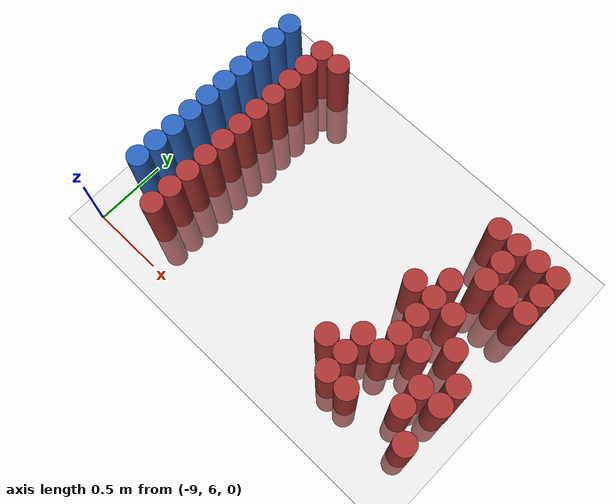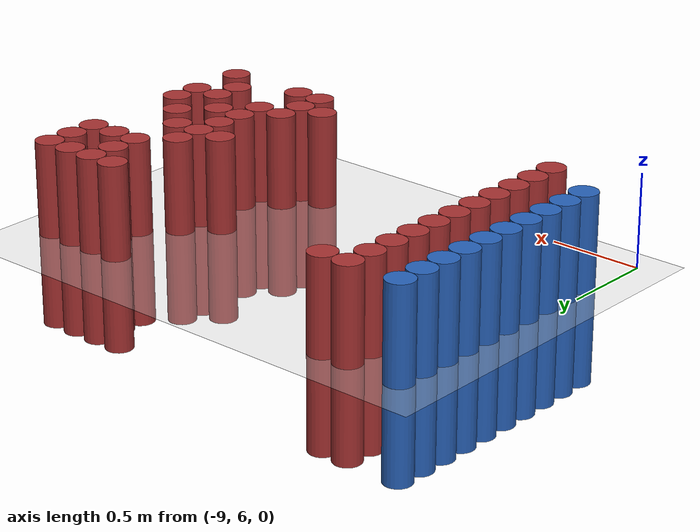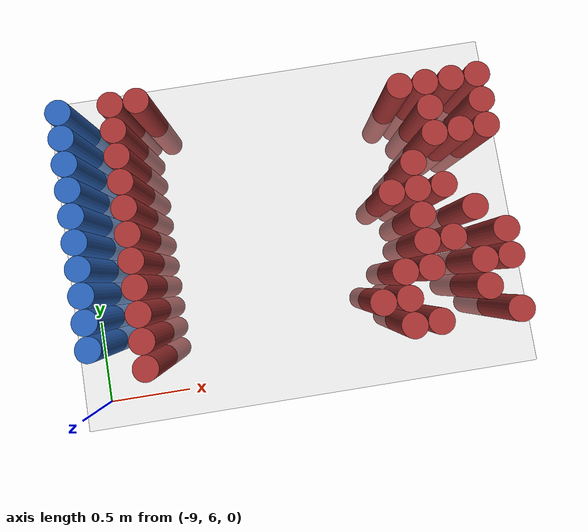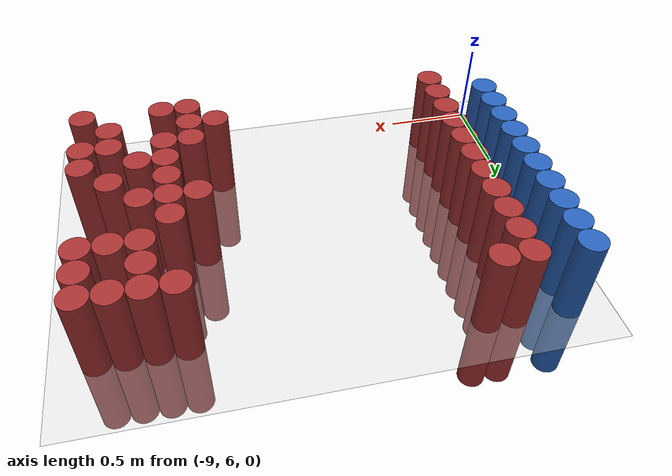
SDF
<sdf version="1.6">
 <world name="default">
  <model name="ground_plane">
   <static>1</static>
   <link name="link">
    <collision name="collision">
     <geometry><plane><normal>0 0 1</normal><size>100 100</size></plane></geometry>
     <surface><friction><ode><mu>100</mu><mu2>50</mu2></ode></friction></surface>
    </collision>
    <visual name="visual">
     <cast_shadows>0</cast_shadows>
     <geometry><plane><normal>0 0 1</normal><size>100 100</size></plane></geometry>
     <material>
      <script><uri>file://media/materials/scripts/gazebo.material</uri><name>Gazebo/Grey</name></script>
     </material>
    </visual>
   </link>
  </model>
  <model name="unit_cylinder_133">
   <static>1</static>
   <pose>-8.925000 6.375000 0.000000 0.000000 0.000000 0.000000</pose>
   <link name="link">
    <inertial>
     <mass>1</mass>
     <inertia><ixx>0.145833</ixx><ixy>0</ixy><ixz>0</ixz><iyy>0.145833</iyy><iyz>0</iyz><izz>0.125</izz></inertia>
    </inertial>
    <collision name="collision">
     <geometry><cylinder><radius>0.075000</radius><length>1</length></cylinder></geometry>
    </collision>
    <visual name="visual">
     <geometry><cylinder><radius>0.075000</radius><length>1</length></cylinder></geometry>
     <material>
      <ambient>0.152000 0.379000 0.720000 1</ambient>
      <diffuse>0.152000 0.379000 0.720000 1</diffuse>
     </material>
     <material>
      <script><name>Gazebo/Grey</name><uri>file://media/materials/scripts/gazebo.material</uri></script>
     </material>
    </visual>
   </link>
  </model>
  <model name="unit_cylinder_134">
   <static>1</static>
   <pose>-8.925000 6.525000 0.000000 0.000000 0.000000 0.000000</pose>
   <link name="link">
    <inertial>
     <mass>1</mass>
     <inertia><ixx>0.145833</ixx><ixy>0</ixy><ixz>0</ixz><iyy>0.145833</iyy><iyz>0</iyz><izz>0.125</izz></inertia>
    </inertial>
    <collision name="collision">
     <geometry><cylinder><radius>0.075000</radius><length>1</length></cylinder></geometry>
    </collision>
    <visual name="visual">
     <geometry><cylinder><radius>0.075000</radius><length>1</length></cylinder></geometry>
     <material>
      <ambient>0.152000 0.379000 0.720000 1</ambient>
      <diffuse>0.152000 0.379000 0.720000 1</diffuse>
     </material>
     <material>
      <script><name>Gazebo/Grey</name><uri>file://media/materials/scripts/gazebo.material</uri></script>
     </material>
    </visual>
   </link>
  </model>
  <model name="unit_cylinder_135">
   <static>1</static>
   <pose>-8.925000 6.675000 0.000000 0.000000 0.000000 0.000000</pose>
   <link name="link">
    <inertial>
     <mass>1</mass>
     <inertia><ixx>0.145833</ixx><ixy>0</ixy><ixz>0</ixz><iyy>0.145833</iyy><iyz>0</iyz><izz>0.125</izz></inertia>
    </inertial>
    <collision name="collision">
     <geometry><cylinder><radius>0.075000</radius><length>1</length></cylinder></geometry>
    </collision>
    <visual name="visual">
     <geometry><cylinder><radius>0.075000</radius><length>1</length></cylinder></geometry>
     <material>
      <ambient>0.152000 0.379000 0.720000 1</ambient>
      <diffuse>0.152000 0.379000 0.720000 1</diffuse>
     </material>
     <material>
      <script><name>Gazebo/Grey</name><uri>file://media/materials/scripts/gazebo.material</uri></script>
     </material>
    </visual>
   </link>
  </model>
  <model name="unit_cylinder_136">
   <static>1</static>
   <pose>-8.925000 6.825000 0.000000 0.000000 0.000000 0.000000</pose>
   <link name="link">
    <inertial>
     <mass>1</mass>
     <inertia><ixx>0.145833</ixx><ixy>0</ixy><ixz>0</ixz><iyy>0.145833</iyy><iyz>0</iyz><izz>0.125</izz></inertia>
    </inertial>
    <collision name="collision">
     <geometry><cylinder><radius>0.075000</radius><length>1</length></cylinder></geometry>
    </collision>
    <visual name="visual">
     <geometry><cylinder><radius>0.075000</radius><length>1</length></cylinder></geometry>
     <material>
      <ambient>0.152000 0.379000 0.720000 1</ambient>
      <diffuse>0.152000 0.379000 0.720000 1</diffuse>
     </material>
     <material>
      <script><name>Gazebo/Grey</name><uri>file://media/materials/scripts/gazebo.material</uri></script>
     </material>
    </visual>
   </link>
  </model>
  <model name="unit_cylinder_137">
   <static>1</static>
   <pose>-8.925000 6.975000 0.000000 0.000000 0.000000 0.000000</pose>
   <link name="link">
    <inertial>
     <mass>1</mass>
     <inertia><ixx>0.145833</ixx><ixy>0</ixy><ixz>0</ixz><iyy>0.145833</iyy><iyz>0</iyz><izz>0.125</izz></inertia>
    </inertial>
    <collision name="collision">
     <geometry><cylinder><radius>0.075000</radius><length>1</length></cylinder></geometry>
    </collision>
    <visual name="visual">
     <geometry><cylinder><radius>0.075000</radius><length>1</length></cylinder></geometry>
     <material>
      <ambient>0.152000 0.379000 0.720000 1</ambient>
      <diffuse>0.152000 0.379000 0.720000 1</diffuse>
     </material>
     <material>
      <script><name>Gazebo/Grey</name><uri>file://media/materials/scripts/gazebo.material</uri></script>
     </material>
    </visual>
   </link>
  </model>
  <model name="unit_cylinder_138">
   <static>1</static>
   <pose>-8.925000 7.125000 0.000000 0.000000 0.000000 0.000000</pose>
   <link name="link">
    <inertial>
     <mass>1</mass>
     <inertia><ixx>0.145833</ixx><ixy>0</ixy><ixz>0</ixz><iyy>0.145833</iyy><iyz>0</iyz><izz>0.125</izz></inertia>
    </inertial>
    <collision name="collision">
     <geometry><cylinder><radius>0.075000</radius><length>1</length></cylinder></geometry>
    </collision>
    <visual name="visual">
     <geometry><cylinder><radius>0.075000</radius><length>1</length></cylinder></geometry>
     <material>
      <ambient>0.152000 0.379000 0.720000 1</ambient>
      <diffuse>0.152000 0.379000 0.720000 1</diffuse>
     </material>
     <material>
      <script><name>Gazebo/Grey</name><uri>file://media/materials/scripts/gazebo.material</uri></script>
     </material>
    </visual>
   </link>
  </model>
  <model name="unit_cylinder_139">
   <static>1</static>
   <pose>-8.925000 7.275000 0.000000 0.000000 0.000000 0.000000</pose>
   <link name="link">
    <inertial>
     <mass>1</mass>
     <inertia><ixx>0.145833</ixx><ixy>0</ixy><ixz>0</ixz><iyy>0.145833</iyy><iyz>0</iyz><izz>0.125</izz></inertia>
    </inertial>
    <collision name="collision">
     <geometry><cylinder><radius>0.075000</radius><length>1</length></cylinder></geometry>
    </collision>
    <visual name="visual">
     <geometry><cylinder><radius>0.075000</radius><length>1</length></cylinder></geometry>
     <material>
      <ambient>0.152000 0.379000 0.720000 1</ambient>
      <diffuse>0.152000 0.379000 0.720000 1</diffuse>
     </material>
     <material>
      <script><name>Gazebo/Grey</name><uri>file://media/materials/scripts/gazebo.material</uri></script>
     </material>
    </visual>
   </link>
  </model>
  <model name="unit_cylinder_140">
   <static>1</static>
   <pose>-8.925000 7.425000 0.000000 0.000000 0.000000 0.000000</pose>
   <link name="link">
    <inertial>
     <mass>1</mass>
     <inertia><ixx>0.145833</ixx><ixy>0</ixy><ixz>0</ixz><iyy>0.145833</iyy><iyz>0</iyz><izz>0.125</izz></inertia>
    </inertial>
    <collision name="collision">
     <geometry><cylinder><radius>0.075000</radius><length>1</length></cylinder></geometry>
    </collision>
    <visual name="visual">
     <geometry><cylinder><radius>0.075000</radius><length>1</length></cylinder></geometry>
     <material>
      <ambient>0.152000 0.379000 0.720000 1</ambient>
      <diffuse>0.152000 0.379000 0.720000 1</diffuse>
     </material>
     <material>
      <script><name>Gazebo/Grey</name><uri>file://media/materials/scripts/gazebo.material</uri></script>
     </material>
    </visual>
   </link>
  </model>
  <model name="unit_cylinder_141">
   <static>1</static>
   <pose>-8.925000 7.575000 0.000000 0.000000 0.000000 0.000000</pose>
   <link name="link">
    <inertial>
     <mass>1</mass>
     <inertia><ixx>0.145833</ixx><ixy>0</ixy><ixz>0</ixz><iyy>0.145833</iyy><iyz>0</iyz><izz>0.125</izz></inertia>
    </inertial>
    <collision name="collision">
     <geometry><cylinder><radius>0.075000</radius><length>1</length></cylinder></geometry>
    </collision>
    <visual name="visual">
     <geometry><cylinder><radius>0.075000</radius><length>1</length></cylinder></geometry>
     <material>
      <ambient>0.152000 0.379000 0.720000 1</ambient>
      <diffuse>0.152000 0.379000 0.720000 1</diffuse>
     </material>
     <material>
      <script><name>Gazebo/Grey</name><uri>file://media/materials/scripts/gazebo.material</uri></script>
     </material>
    </visual>
   </link>
  </model>
  <model name="unit_cylinder_142">
   <static>1</static>
   <pose>-8.925000 7.725000 0.000000 0.000000 0.000000 0.000000</pose>
   <link name="link">
    <inertial>
     <mass>1</mass>
     <inertia><ixx>0.145833</ixx><ixy>0</ixy><ixz>0</ixz><iyy>0.145833</iyy><iyz>0</iyz><izz>0.125</izz></inertia>
    </inertial>
    <collision name="collision">
     <geometry><cylinder><radius>0.075000</radius><length>1</length></cylinder></geometry>
    </collision>
    <visual name="visual">
     <geometry><cylinder><radius>0.075000</radius><length>1</length></cylinder></geometry>
     <material>
      <ambient>0.152000 0.379000 0.720000 1</ambient>
      <diffuse>0.152000 0.379000 0.720000 1</diffuse>
     </material>
     <material>
      <script><name>Gazebo/Grey</name><uri>file://media/materials/scripts/gazebo.material</uri></script>
     </material>
    </visual>
   </link>
  </model>
  <model name="unit_cylinder_164">
   <static>1</static>
   <pose>-8.625000 6.225000 0.000000 0.000000 0.000000 0.000000</pose>
   <link name="link">
    <inertial>
     <mass>1</mass>
     <inertia><ixx>0.145833</ixx><ixy>0</ixy><ixz>0</ixz><iyy>0.145833</iyy><iyz>0</iyz><izz>0.125</izz></inertia>
    </inertial>
    <collision name="collision">
     <geometry><cylinder><radius>0.075000</radius><length>1</length></cylinder></geometry>
    </collision>
    <visual name="visual">
     <geometry><cylinder><radius>0.075000</radius><length>1</length></cylinder></geometry>
     <material>
      <ambient>0.648000 0.192000 0.192000 1</ambient>
      <diffuse>0.648000 0.192000 0.192000 1</diffuse>
     </material>
     <material>
      <script><name>Gazebo/Grey</name><uri>file://media/materials/scripts/gazebo.material</uri></script>
     </material>
    </visual>
   </link>
  </model>
  <model name="unit_cylinder_165">
   <static>1</static>
   <pose>-8.625000 6.375000 0.000000 0.000000 0.000000 0.000000</pose>
   <link name="link">
    <inertial>
     <mass>1</mass>
     <inertia><ixx>0.145833</ixx><ixy>0</ixy><ixz>0</ixz><iyy>0.145833</iyy><iyz>0</iyz><izz>0.125</izz></inertia>
    </inertial>
    <collision name="collision">
     <geometry><cylinder><radius>0.075000</radius><length>1</length></cylinder></geometry>
    </collision>
    <visual name="visual">
     <geometry><cylinder><radius>0.075000</radius><length>1</length></cylinder></geometry>
     <material>
      <ambient>0.648000 0.192000 0.192000 1</ambient>
      <diffuse>0.648000 0.192000 0.192000 1</diffuse>
     </material>
     <material>
      <script><name>Gazebo/Grey</name><uri>file://media/materials/scripts/gazebo.material</uri></script>
     </material>
    </visual>
   </link>
  </model>
  <model name="unit_cylinder_166">
   <static>1</static>
   <pose>-8.625000 6.525000 0.000000 0.000000 0.000000 0.000000</pose>
   <link name="link">
    <inertial>
     <mass>1</mass>
     <inertia><ixx>0.145833</ixx><ixy>0</ixy><ixz>0</ixz><iyy>0.145833</iyy><iyz>0</iyz><izz>0.125</izz></inertia>
    </inertial>
    <collision name="collision">
     <geometry><cylinder><radius>0.075000</radius><length>1</length></cylinder></geometry>
    </collision>
    <visual name="visual">
     <geometry><cylinder><radius>0.075000</radius><length>1</length></cylinder></geometry>
     <material>
      <ambient>0.648000 0.192000 0.192000 1</ambient>
      <diffuse>0.648000 0.192000 0.192000 1</diffuse>
     </material>
     <material>
      <script><name>Gazebo/Grey</name><uri>file://media/materials/scripts/gazebo.material</uri></script>
     </material>
    </visual>
   </link>
  </model>
  <model name="unit_cylinder_167">
   <static>1</static>
   <pose>-8.625000 6.675000 0.000000 0.000000 0.000000 0.000000</pose>
   <link name="link">
    <inertial>
     <mass>1</mass>
     <inertia><ixx>0.145833</ixx><ixy>0</ixy><ixz>0</ixz><iyy>0.145833</iyy><iyz>0</iyz><izz>0.125</izz></inertia>
    </inertial>
    <collision name="collision">
     <geometry><cylinder><radius>0.075000</radius><length>1</length></cylinder></geometry>
    </collision>
    <visual name="visual">
     <geometry><cylinder><radius>0.075000</radius><length>1</length></cylinder></geometry>
     <material>
      <ambient>0.648000 0.192000 0.192000 1</ambient>
      <diffuse>0.648000 0.192000 0.192000 1</diffuse>
     </material>
     <material>
      <script><name>Gazebo/Grey</name><uri>file://media/materials/scripts/gazebo.material</uri></script>
     </material>
    </visual>
   </link>
  </model>
  <model name="unit_cylinder_168">
   <static>1</static>
   <pose>-8.625000 6.825000 0.000000 0.000000 0.000000 0.000000</pose>
   <link name="link">
    <inertial>
     <mass>1</mass>
     <inertia><ixx>0.145833</ixx><ixy>0</ixy><ixz>0</ixz><iyy>0.145833</iyy><iyz>0</iyz><izz>0.125</izz></inertia>
    </inertial>
    <collision name="collision">
     <geometry><cylinder><radius>0.075000</radius><length>1</length></cylinder></geometry>
    </collision>
    <visual name="visual">
     <geometry><cylinder><radius>0.075000</radius><length>1</length></cylinder></geometry>
     <material>
      <ambient>0.648000 0.192000 0.192000 1</ambient>
      <diffuse>0.648000 0.192000 0.192000 1</diffuse>
     </material>
     <material>
      <script><name>Gazebo/Grey</name><uri>file://media/materials/scripts/gazebo.material</uri></script>
     </material>
    </visual>
   </link>
  </model>
  <model name="unit_cylinder_169">
   <static>1</static>
   <pose>-8.625000 6.975000 0.000000 0.000000 0.000000 0.000000</pose>
   <link name="link">
    <inertial>
     <mass>1</mass>
     <inertia><ixx>0.145833</ixx><ixy>0</ixy><ixz>0</ixz><iyy>0.145833</iyy><iyz>0</iyz><izz>0.125</izz></inertia>
    </inertial>
    <collision name="collision">
     <geometry><cylinder><radius>0.075000</radius><length>1</length></cylinder></geometry>
    </collision>
    <visual name="visual">
     <geometry><cylinder><radius>0.075000</radius><length>1</length></cylinder></geometry>
     <material>
      <ambient>0.648000 0.192000 0.192000 1</ambient>
      <diffuse>0.648000 0.192000 0.192000 1</diffuse>
     </material>
     <material>
      <script><name>Gazebo/Grey</name><uri>file://media/materials/scripts/gazebo.material</uri></script>
     </material>
    </visual>
   </link>
  </model>
  <model name="unit_cylinder_170">
   <static>1</static>
   <pose>-8.625000 7.125000 0.000000 0.000000 0.000000 0.000000</pose>
   <link name="link">
    <inertial>
     <mass>1</mass>
     <inertia><ixx>0.145833</ixx><ixy>0</ixy><ixz>0</ixz><iyy>0.145833</iyy><iyz>0</iyz><izz>0.125</izz></inertia>
    </inertial>
    <collision name="collision">
     <geometry><cylinder><radius>0.075000</radius><length>1</length></cylinder></geometry>
    </collision>
    <visual name="visual">
     <geometry><cylinder><radius>0.075000</radius><length>1</length></cylinder></geometry>
     <material>
      <ambient>0.648000 0.192000 0.192000 1</ambient>
      <diffuse>0.648000 0.192000 0.192000 1</diffuse>
     </material>
     <material>
      <script><name>Gazebo/Grey</name><uri>file://media/materials/scripts/gazebo.material</uri></script>
     </material>
    </visual>
   </link>
  </model>
  <model name="unit_cylinder_171">
   <static>1</static>
   <pose>-8.625000 7.275000 0.000000 0.000000 0.000000 0.000000</pose>
   <link name="link">
    <inertial>
     <mass>1</mass>
     <inertia><ixx>0.145833</ixx><ixy>0</ixy><ixz>0</ixz><iyy>0.145833</iyy><iyz>0</iyz><izz>0.125</izz></inertia>
    </inertial>
    <collision name="collision">
     <geometry><cylinder><radius>0.075000</radius><length>1</length></cylinder></geometry>
    </collision>
    <visual name="visual">
     <geometry><cylinder><radius>0.075000</radius><length>1</length></cylinder></geometry>
     <material>
      <ambient>0.648000 0.192000 0.192000 1</ambient>
      <diffuse>0.648000 0.192000 0.192000 1</diffuse>
     </material>
     <material>
      <script><name>Gazebo/Grey</name><uri>file://media/materials/scripts/gazebo.material</uri></script>
     </material>
    </visual>
   </link>
  </model>
  <model name="unit_cylinder_172">
   <static>1</static>
   <pose>-8.625000 7.425000 0.000000 0.000000 0.000000 0.000000</pose>
   <link name="link">
    <inertial>
     <mass>1</mass>
     <inertia><ixx>0.145833</ixx><ixy>0</ixy><ixz>0</ixz><iyy>0.145833</iyy><iyz>0</iyz><izz>0.125</izz></inertia>
    </inertial>
    <collision name="collision">
     <geometry><cylinder><radius>0.075000</radius><length>1</length></cylinder></geometry>
    </collision>
    <visual name="visual">
     <geometry><cylinder><radius>0.075000</radius><length>1</length></cylinder></geometry>
     <material>
      <ambient>0.648000 0.192000 0.192000 1</ambient>
      <diffuse>0.648000 0.192000 0.192000 1</diffuse>
     </material>
     <material>
      <script><name>Gazebo/Grey</name><uri>file://media/materials/scripts/gazebo.material</uri></script>
     </material>
    </visual>
   </link>
  </model>
  <model name="unit_cylinder_173">
   <static>1</static>
   <pose>-8.625000 7.575000 0.000000 0.000000 0.000000 0.000000</pose>
   <link name="link">
    <inertial>
     <mass>1</mass>
     <inertia><ixx>0.145833</ixx><ixy>0</ixy><ixz>0</ixz><iyy>0.145833</iyy><iyz>0</iyz><izz>0.125</izz></inertia>
    </inertial>
    <collision name="collision">
     <geometry><cylinder><radius>0.075000</radius><length>1</length></cylinder></geometry>
    </collision>
    <visual name="visual">
     <geometry><cylinder><radius>0.075000</radius><length>1</length></cylinder></geometry>
     <material>
      <ambient>0.648000 0.192000 0.192000 1</ambient>
      <diffuse>0.648000 0.192000 0.192000 1</diffuse>
     </material>
     <material>
      <script><name>Gazebo/Grey</name><uri>file://media/materials/scripts/gazebo.material</uri></script>
     </material>
    </visual>
   </link>
  </model>
  <model name="unit_cylinder_174">
   <static>1</static>
   <pose>-8.625000 7.725000 0.000000 0.000000 0.000000 0.000000</pose>
   <link name="link">
    <inertial>
     <mass>1</mass>
     <inertia><ixx>0.145833</ixx><ixy>0</ixy><ixz>0</ixz><iyy>0.145833</iyy><iyz>0</iyz><izz>0.125</izz></inertia>
    </inertial>
    <collision name="collision">
     <geometry><cylinder><radius>0.075000</radius><length>1</length></cylinder></geometry>
    </collision>
    <visual name="visual">
     <geometry><cylinder><radius>0.075000</radius><length>1</length></cylinder></geometry>
     <material>
      <ambient>0.648000 0.192000 0.192000 1</ambient>
      <diffuse>0.648000 0.192000 0.192000 1</diffuse>
     </material>
     <material>
      <script><name>Gazebo/Grey</name><uri>file://media/materials/scripts/gazebo.material</uri></script>
     </material>
    </visual>
   </link>
  </model>
  <model name="unit_cylinder_176">
   <static>1</static>
   <pose>-8.475000 7.725000 0.000000 0.000000 0.000000 0.000000</pose>
   <link name="link">
    <inertial>
     <mass>1</mass>
     <inertia><ixx>0.145833</ixx><ixy>0</ixy><ixz>0</ixz><iyy>0.145833</iyy><iyz>0</iyz><izz>0.125</izz></inertia>
    </inertial>
    <collision name="collision">
     <geometry><cylinder><radius>0.075000</radius><length>1</length></cylinder></geometry>
    </collision>
    <visual name="visual">
     <geometry><cylinder><radius>0.075000</radius><length>1</length></cylinder></geometry>
     <material>
      <ambient>0.648000 0.192000 0.192000 1</ambient>
      <diffuse>0.648000 0.192000 0.192000 1</diffuse>
     </material>
     <material>
      <script><name>Gazebo/Grey</name><uri>file://media/materials/scripts/gazebo.material</uri></script>
     </material>
    </visual>
   </link>
  </model>
  <model name="unit_cylinder_201">
   <static>1</static>
   <pose>-7.275000 6.375000 0.000000 0.000000 0.000000 0.000000</pose>
   <link name="link">
    <inertial>
     <mass>1</mass>
     <inertia><ixx>0.145833</ixx><ixy>0</ixy><ixz>0</ixz><iyy>0.145833</iyy><iyz>0</iyz><izz>0.125</izz></inertia>
    </inertial>
    <collision name="collision">
     <geometry><cylinder><radius>0.075000</radius><length>1</length></cylinder></geometry>
    </collision>
    <visual name="visual">
     <geometry><cylinder><radius>0.075000</radius><length>1</length></cylinder></geometry>
     <material>
      <ambient>0.648000 0.192000 0.192000 1</ambient>
      <diffuse>0.648000 0.192000 0.192000 1</diffuse>
     </material>
     <material>
      <script><name>Gazebo/Grey</name><uri>file://media/materials/scripts/gazebo.material</uri></script>
     </material>
    </visual>
   </link>
  </model>
  <model name="unit_cylinder_206">
   <static>1</static>
   <pose>-7.125000 6.225000 0.000000 0.000000 0.000000 0.000000</pose>
   <link name="link">
    <inertial>
     <mass>1</mass>
     <inertia><ixx>0.145833</ixx><ixy>0</ixy><ixz>0</ixz><iyy>0.145833</iyy><iyz>0</iyz><izz>0.125</izz></inertia>
    </inertial>
    <collision name="collision">
     <geometry><cylinder><radius>0.075000</radius><length>1</length></cylinder></geometry>
    </collision>
    <visual name="visual">
     <geometry><cylinder><radius>0.075000</radius><length>1</length></cylinder></geometry>
     <material>
      <ambient>0.648000 0.192000 0.192000 1</ambient>
      <diffuse>0.648000 0.192000 0.192000 1</diffuse>
     </material>
     <material>
      <script><name>Gazebo/Grey</name><uri>file://media/materials/scripts/gazebo.material</uri></script>
     </material>
    </visual>
   </link>
  </model>
  <model name="unit_cylinder_207">
   <static>1</static>
   <pose>-7.125000 6.375000 0.000000 0.000000 0.000000 0.000000</pose>
   <link name="link">
    <inertial>
     <mass>1</mass>
     <inertia><ixx>0.145833</ixx><ixy>0</ixy><ixz>0</ixz><iyy>0.145833</iyy><iyz>0</iyz><izz>0.125</izz></inertia>
    </inertial>
    <collision name="collision">
     <geometry><cylinder><radius>0.075000</radius><length>1</length></cylinder></geometry>
    </collision>
    <visual name="visual">
     <geometry><cylinder><radius>0.075000</radius><length>1</length></cylinder></geometry>
     <material>
      <ambient>0.648000 0.192000 0.192000 1</ambient>
      <diffuse>0.648000 0.192000 0.192000 1</diffuse>
     </material>
     <material>
      <script><name>Gazebo/Grey</name><uri>file://media/materials/scripts/gazebo.material</uri></script>
     </material>
    </visual>
   </link>
  </model>
  <model name="unit_cylinder_208">
   <static>1</static>
   <pose>-7.125000 6.525000 0.000000 0.000000 0.000000 0.000000</pose>
   <link name="link">
    <inertial>
     <mass>1</mass>
     <inertia><ixx>0.145833</ixx><ixy>0</ixy><ixz>0</ixz><iyy>0.145833</iyy><iyz>0</iyz><izz>0.125</izz></inertia>
    </inertial>
    <collision name="collision">
     <geometry><cylinder><radius>0.075000</radius><length>1</length></cylinder></geometry>
    </collision>
    <visual name="visual">
     <geometry><cylinder><radius>0.075000</radius><length>1</length></cylinder></geometry>
     <material>
      <ambient>0.648000 0.192000 0.192000 1</ambient>
      <diffuse>0.648000 0.192000 0.192000 1</diffuse>
     </material>
     <material>
      <script><name>Gazebo/Grey</name><uri>file://media/materials/scripts/gazebo.material</uri></script>
     </material>
    </visual>
   </link>
  </model>
  <model name="unit_cylinder_209">
   <static>1</static>
   <pose>-7.125000 6.975000 0.000000 0.000000 0.000000 0.000000</pose>
   <link name="link">
    <inertial>
     <mass>1</mass>
     <inertia><ixx>0.145833</ixx><ixy>0</ixy><ixz>0</ixz><iyy>0.145833</iyy><iyz>0</iyz><izz>0.125</izz></inertia>
    </inertial>
    <collision name="collision">
     <geometry><cylinder><radius>0.075000</radius><length>1</length></cylinder></geometry>
    </collision>
    <visual name="visual">
     <geometry><cylinder><radius>0.075000</radius><length>1</length></cylinder></geometry>
     <material>
      <ambient>0.648000 0.192000 0.192000 1</ambient>
      <diffuse>0.648000 0.192000 0.192000 1</diffuse>
     </material>
     <material>
      <script><name>Gazebo/Grey</name><uri>file://media/materials/scripts/gazebo.material</uri></script>
     </material>
    </visual>
   </link>
  </model>
  <model name="unit_cylinder_216">
   <static>1</static>
   <pose>-6.975000 6.225000 0.000000 0.000000 0.000000 0.000000</pose>
   <link name="link">
    <inertial>
     <mass>1</mass>
     <inertia><ixx>0.145833</ixx><ixy>0</ixy><ixz>0</ixz><iyy>0.145833</iyy><iyz>0</iyz><izz>0.125</izz></inertia>
    </inertial>
    <collision name="collision">
     <geometry><cylinder><radius>0.075000</radius><length>1</length></cylinder></geometry>
    </collision>
    <visual name="visual">
     <geometry><cylinder><radius>0.075000</radius><length>1</length></cylinder></geometry>
     <material>
      <ambient>0.648000 0.192000 0.192000 1</ambient>
      <diffuse>0.648000 0.192000 0.192000 1</diffuse>
     </material>
     <material>
      <script><name>Gazebo/Grey</name><uri>file://media/materials/scripts/gazebo.material</uri></script>
     </material>
    </visual>
   </link>
  </model>
  <model name="unit_cylinder_217">
   <static>1</static>
   <pose>-6.975000 6.525000 0.000000 0.000000 0.000000 0.000000</pose>
   <link name="link">
    <inertial>
     <mass>1</mass>
     <inertia><ixx>0.145833</ixx><ixy>0</ixy><ixz>0</ixz><iyy>0.145833</iyy><iyz>0</iyz><izz>0.125</izz></inertia>
    </inertial>
    <collision name="collision">
     <geometry><cylinder><radius>0.075000</radius><length>1</length></cylinder></geometry>
    </collision>
    <visual name="visual">
     <geometry><cylinder><radius>0.075000</radius><length>1</length></cylinder></geometry>
     <material>
      <ambient>0.648000 0.192000 0.192000 1</ambient>
      <diffuse>0.648000 0.192000 0.192000 1</diffuse>
     </material>
     <material>
      <script><name>Gazebo/Grey</name><uri>file://media/materials/scripts/gazebo.material</uri></script>
     </material>
    </visual>
   </link>
  </model>
  <model name="unit_cylinder_218">
   <static>1</static>
   <pose>-6.975000 6.675000 0.000000 0.000000 0.000000 0.000000</pose>
   <link name="link">
    <inertial>
     <mass>1</mass>
     <inertia><ixx>0.145833</ixx><ixy>0</ixy><ixz>0</ixz><iyy>0.145833</iyy><iyz>0</iyz><izz>0.125</izz></inertia>
    </inertial>
    <collision name="collision">
     <geometry><cylinder><radius>0.075000</radius><length>1</length></cylinder></geometry>
    </collision>
    <visual name="visual">
     <geometry><cylinder><radius>0.075000</radius><length>1</length></cylinder></geometry>
     <material>
      <ambient>0.648000 0.192000 0.192000 1</ambient>
      <diffuse>0.648000 0.192000 0.192000 1</diffuse>
     </material>
     <material>
      <script><name>Gazebo/Grey</name><uri>file://media/materials/scripts/gazebo.material</uri></script>
     </material>
    </visual>
   </link>
  </model>
  <model name="unit_cylinder_219">
   <static>1</static>
   <pose>-6.975000 6.825000 0.000000 0.000000 0.000000 0.000000</pose>
   <link name="link">
    <inertial>
     <mass>1</mass>
     <inertia><ixx>0.145833</ixx><ixy>0</ixy><ixz>0</ixz><iyy>0.145833</iyy><iyz>0</iyz><izz>0.125</izz></inertia>
    </inertial>
    <collision name="collision">
     <geometry><cylinder><radius>0.075000</radius><length>1</length></cylinder></geometry>
    </collision>
    <visual name="visual">
     <geometry><cylinder><radius>0.075000</radius><length>1</length></cylinder></geometry>
     <material>
      <ambient>0.648000 0.192000 0.192000 1</ambient>
      <diffuse>0.648000 0.192000 0.192000 1</diffuse>
     </material>
     <material>
      <script><name>Gazebo/Grey</name><uri>file://media/materials/scripts/gazebo.material</uri></script>
     </material>
    </visual>
   </link>
  </model>
  <model name="unit_cylinder_220">
   <static>1</static>
   <pose>-6.975000 6.975000 0.000000 0.000000 0.000000 0.000000</pose>
   <link name="link">
    <inertial>
     <mass>1</mass>
     <inertia><ixx>0.145833</ixx><ixy>0</ixy><ixz>0</ixz><iyy>0.145833</iyy><iyz>0</iyz><izz>0.125</izz></inertia>
    </inertial>
    <collision name="collision">
     <geometry><cylinder><radius>0.075000</radius><length>1</length></cylinder></geometry>
    </collision>
    <visual name="visual">
     <geometry><cylinder><radius>0.075000</radius><length>1</length></cylinder></geometry>
     <material>
      <ambient>0.648000 0.192000 0.192000 1</ambient>
      <diffuse>0.648000 0.192000 0.192000 1</diffuse>
     </material>
     <material>
      <script><name>Gazebo/Grey</name><uri>file://media/materials/scripts/gazebo.material</uri></script>
     </material>
    </visual>
   </link>
  </model>
  <model name="unit_cylinder_221">
   <static>1</static>
   <pose>-6.975000 7.125000 0.000000 0.000000 0.000000 0.000000</pose>
   <link name="link">
    <inertial>
     <mass>1</mass>
     <inertia><ixx>0.145833</ixx><ixy>0</ixy><ixz>0</ixz><iyy>0.145833</iyy><iyz>0</iyz><izz>0.125</izz></inertia>
    </inertial>
    <collision name="collision">
     <geometry><cylinder><radius>0.075000</radius><length>1</length></cylinder></geometry>
    </collision>
    <visual name="visual">
     <geometry><cylinder><radius>0.075000</radius><length>1</length></cylinder></geometry>
     <material>
      <ambient>0.648000 0.192000 0.192000 1</ambient>
      <diffuse>0.648000 0.192000 0.192000 1</diffuse>
     </material>
     <material>
      <script><name>Gazebo/Grey</name><uri>file://media/materials/scripts/gazebo.material</uri></script>
     </material>
    </visual>
   </link>
  </model>
  <model name="unit_cylinder_222">
   <static>1</static>
   <pose>-6.975000 7.575000 0.000000 0.000000 0.000000 0.000000</pose>
   <link name="link">
    <inertial>
     <mass>1</mass>
     <inertia><ixx>0.145833</ixx><ixy>0</ixy><ixz>0</ixz><iyy>0.145833</iyy><iyz>0</iyz><izz>0.125</izz></inertia>
    </inertial>
    <collision name="collision">
     <geometry><cylinder><radius>0.075000</radius><length>1</length></cylinder></geometry>
    </collision>
    <visual name="visual">
     <geometry><cylinder><radius>0.075000</radius><length>1</length></cylinder></geometry>
     <material>
      <ambient>0.648000 0.192000 0.192000 1</ambient>
      <diffuse>0.648000 0.192000 0.192000 1</diffuse>
     </material>
     <material>
      <script><name>Gazebo/Grey</name><uri>file://media/materials/scripts/gazebo.material</uri></script>
     </material>
    </visual>
   </link>
  </model>
  <model name="unit_cylinder_226">
   <static>1</static>
   <pose>-6.825000 6.675000 0.000000 0.000000 0.000000 0.000000</pose>
   <link name="link">
    <inertial>
     <mass>1</mass>
     <inertia><ixx>0.145833</ixx><ixy>0</ixy><ixz>0</ixz><iyy>0.145833</iyy><iyz>0</iyz><izz>0.125</izz></inertia>
    </inertial>
    <collision name="collision">
     <geometry><cylinder><radius>0.075000</radius><length>1</length></cylinder></geometry>
    </collision>
    <visual name="visual">
     <geometry><cylinder><radius>0.075000</radius><length>1</length></cylinder></geometry>
     <material>
      <ambient>0.648000 0.192000 0.192000 1</ambient>
      <diffuse>0.648000 0.192000 0.192000 1</diffuse>
     </material>
     <material>
      <script><name>Gazebo/Grey</name><uri>file://media/materials/scripts/gazebo.material</uri></script>
     </material>
    </visual>
   </link>
  </model>
  <model name="unit_cylinder_227">
   <static>1</static>
   <pose>-6.825000 6.975000 0.000000 0.000000 0.000000 0.000000</pose>
   <link name="link">
    <inertial>
     <mass>1</mass>
     <inertia><ixx>0.145833</ixx><ixy>0</ixy><ixz>0</ixz><iyy>0.145833</iyy><iyz>0</iyz><izz>0.125</izz></inertia>
    </inertial>
    <collision name="collision">
     <geometry><cylinder><radius>0.075000</radius><length>1</length></cylinder></geometry>
    </collision>
    <visual name="visual">
     <geometry><cylinder><radius>0.075000</radius><length>1</length></cylinder></geometry>
     <material>
      <ambient>0.648000 0.192000 0.192000 1</ambient>
      <diffuse>0.648000 0.192000 0.192000 1</diffuse>
     </material>
     <material>
      <script><name>Gazebo/Grey</name><uri>file://media/materials/scripts/gazebo.material</uri></script>
     </material>
    </visual>
   </link>
  </model>
  <model name="unit_cylinder_228">
   <static>1</static>
   <pose>-6.825000 7.275000 0.000000 0.000000 0.000000 0.000000</pose>
   <link name="link">
    <inertial>
     <mass>1</mass>
     <inertia><ixx>0.145833</ixx><ixy>0</ixy><ixz>0</ixz><iyy>0.145833</iyy><iyz>0</iyz><izz>0.125</izz></inertia>
    </inertial>
    <collision name="collision">
     <geometry><cylinder><radius>0.075000</radius><length>1</length></cylinder></geometry>
    </collision>
    <visual name="visual">
     <geometry><cylinder><radius>0.075000</radius><length>1</length></cylinder></geometry>
     <material>
      <ambient>0.648000 0.192000 0.192000 1</ambient>
      <diffuse>0.648000 0.192000 0.192000 1</diffuse>
     </material>
     <material>
      <script><name>Gazebo/Grey</name><uri>file://media/materials/scripts/gazebo.material</uri></script>
     </material>
    </visual>
   </link>
  </model>
  <model name="unit_cylinder_229">
   <static>1</static>
   <pose>-6.825000 7.425000 0.000000 0.000000 0.000000 0.000000</pose>
   <link name="link">
    <inertial>
     <mass>1</mass>
     <inertia><ixx>0.145833</ixx><ixy>0</ixy><ixz>0</ixz><iyy>0.145833</iyy><iyz>0</iyz><izz>0.125</izz></inertia>
    </inertial>
    <collision name="collision">
     <geometry><cylinder><radius>0.075000</radius><length>1</length></cylinder></geometry>
    </collision>
    <visual name="visual">
     <geometry><cylinder><radius>0.075000</radius><length>1</length></cylinder></geometry>
     <material>
      <ambient>0.648000 0.192000 0.192000 1</ambient>
      <diffuse>0.648000 0.192000 0.192000 1</diffuse>
     </material>
     <material>
      <script><name>Gazebo/Grey</name><uri>file://media/materials/scripts/gazebo.material</uri></script>
     </material>
    </visual>
   </link>
  </model>
  <model name="unit_cylinder_230">
   <static>1</static>
   <pose>-6.825000 7.575000 0.000000 0.000000 0.000000 0.000000</pose>
   <link name="link">
    <inertial>
     <mass>1</mass>
     <inertia><ixx>0.145833</ixx><ixy>0</ixy><ixz>0</ixz><iyy>0.145833</iyy><iyz>0</iyz><izz>0.125</izz></inertia>
    </inertial>
    <collision name="collision">
     <geometry><cylinder><radius>0.075000</radius><length>1</length></cylinder></geometry>
    </collision>
    <visual name="visual">
     <geometry><cylinder><radius>0.075000</radius><length>1</length></cylinder></geometry>
     <material>
      <ambient>0.648000 0.192000 0.192000 1</ambient>
      <diffuse>0.648000 0.192000 0.192000 1</diffuse>
     </material>
     <material>
      <script><name>Gazebo/Grey</name><uri>file://media/materials/scripts/gazebo.material</uri></script>
     </material>
    </visual>
   </link>
  </model>
  <model name="unit_cylinder_238">
   <static>1</static>
   <pose>-6.675000 6.375000 0.000000 0.000000 0.000000 0.000000</pose>
   <link name="link">
    <inertial>
     <mass>1</mass>
     <inertia><ixx>0.145833</ixx><ixy>0</ixy><ixz>0</ixz><iyy>0.145833</iyy><iyz>0</iyz><izz>0.125</izz></inertia>
    </inertial>
    <collision name="collision">
     <geometry><cylinder><radius>0.075000</radius><length>1</length></cylinder></geometry>
    </collision>
    <visual name="visual">
     <geometry><cylinder><radius>0.075000</radius><length>1</length></cylinder></geometry>
     <material>
      <ambient>0.648000 0.192000 0.192000 1</ambient>
      <diffuse>0.648000 0.192000 0.192000 1</diffuse>
     </material>
     <material>
      <script><name>Gazebo/Grey</name><uri>file://media/materials/scripts/gazebo.material</uri></script>
     </material>
    </visual>
   </link>
  </model>
  <model name="unit_cylinder_239">
   <static>1</static>
   <pose>-6.675000 6.525000 0.000000 0.000000 0.000000 0.000000</pose>
   <link name="link">
    <inertial>
     <mass>1</mass>
     <inertia><ixx>0.145833</ixx><ixy>0</ixy><ixz>0</ixz><iyy>0.145833</iyy><iyz>0</iyz><izz>0.125</izz></inertia>
    </inertial>
    <collision name="collision">
     <geometry><cylinder><radius>0.075000</radius><length>1</length></cylinder></geometry>
    </collision>
    <visual name="visual">
     <geometry><cylinder><radius>0.075000</radius><length>1</length></cylinder></geometry>
     <material>
      <ambient>0.648000 0.192000 0.192000 1</ambient>
      <diffuse>0.648000 0.192000 0.192000 1</diffuse>
     </material>
     <material>
      <script><name>Gazebo/Grey</name><uri>file://media/materials/scripts/gazebo.material</uri></script>
     </material>
    </visual>
   </link>
  </model>
  <model name="unit_cylinder_240">
   <static>1</static>
   <pose>-6.675000 6.825000 0.000000 0.000000 0.000000 0.000000</pose>
   <link name="link">
    <inertial>
     <mass>1</mass>
     <inertia><ixx>0.145833</ixx><ixy>0</ixy><ixz>0</ixz><iyy>0.145833</iyy><iyz>0</iyz><izz>0.125</izz></inertia>
    </inertial>
    <collision name="collision">
     <geometry><cylinder><radius>0.075000</radius><length>1</length></cylinder></geometry>
    </collision>
    <visual name="visual">
     <geometry><cylinder><radius>0.075000</radius><length>1</length></cylinder></geometry>
     <material>
      <ambient>0.648000 0.192000 0.192000 1</ambient>
      <diffuse>0.648000 0.192000 0.192000 1</diffuse>
     </material>
     <material>
      <script><name>Gazebo/Grey</name><uri>file://media/materials/scripts/gazebo.material</uri></script>
     </material>
    </visual>
   </link>
  </model>
  <model name="unit_cylinder_241">
   <static>1</static>
   <pose>-6.675000 7.275000 0.000000 0.000000 0.000000 0.000000</pose>
   <link name="link">
    <inertial>
     <mass>1</mass>
     <inertia><ixx>0.145833</ixx><ixy>0</ixy><ixz>0</ixz><iyy>0.145833</iyy><iyz>0</iyz><izz>0.125</izz></inertia>
    </inertial>
    <collision name="collision">
     <geometry><cylinder><radius>0.075000</radius><length>1</length></cylinder></geometry>
    </collision>
    <visual name="visual">
     <geometry><cylinder><radius>0.075000</radius><length>1</length></cylinder></geometry>
     <material>
      <ambient>0.648000 0.192000 0.192000 1</ambient>
      <diffuse>0.648000 0.192000 0.192000 1</diffuse>
     </material>
     <material>
      <script><name>Gazebo/Grey</name><uri>file://media/materials/scripts/gazebo.material</uri></script>
     </material>
    </visual>
   </link>
  </model>
  <model name="unit_cylinder_242">
   <static>1</static>
   <pose>-6.675000 7.575000 0.000000 0.000000 0.000000 0.000000</pose>
   <link name="link">
    <inertial>
     <mass>1</mass>
     <inertia><ixx>0.145833</ixx><ixy>0</ixy><ixz>0</ixz><iyy>0.145833</iyy><iyz>0</iyz><izz>0.125</izz></inertia>
    </inertial>
    <collision name="collision">
     <geometry><cylinder><radius>0.075000</radius><length>1</length></cylinder></geometry>
    </collision>
    <visual name="visual">
     <geometry><cylinder><radius>0.075000</radius><length>1</length></cylinder></geometry>
     <material>
      <ambient>0.648000 0.192000 0.192000 1</ambient>
      <diffuse>0.648000 0.192000 0.192000 1</diffuse>
     </material>
     <material>
      <script><name>Gazebo/Grey</name><uri>file://media/materials/scripts/gazebo.material</uri></script>
     </material>
    </visual>
   </link>
  </model>
  <model name="unit_cylinder_249">
   <static>1</static>
   <pose>-6.525000 6.225000 0.000000 0.000000 0.000000 0.000000</pose>
   <link name="link">
    <inertial>
     <mass>1</mass>
     <inertia><ixx>0.145833</ixx><ixy>0</ixy><ixz>0</ixz><iyy>0.145833</iyy><iyz>0</iyz><izz>0.125</izz></inertia>
    </inertial>
    <collision name="collision">
     <geometry><cylinder><radius>0.075000</radius><length>1</length></cylinder></geometry>
    </collision>
    <visual name="visual">
     <geometry><cylinder><radius>0.075000</radius><length>1</length></cylinder></geometry>
     <material>
      <ambient>0.648000 0.192000 0.192000 1</ambient>
      <diffuse>0.648000 0.192000 0.192000 1</diffuse>
     </material>
     <material>
      <script><name>Gazebo/Grey</name><uri>file://media/materials/scripts/gazebo.material</uri></script>
     </material>
    </visual>
   </link>
  </model>
  <model name="unit_cylinder_250">
   <static>1</static>
   <pose>-6.525000 6.525000 0.000000 0.000000 0.000000 0.000000</pose>
   <link name="link">
    <inertial>
     <mass>1</mass>
     <inertia><ixx>0.145833</ixx><ixy>0</ixy><ixz>0</ixz><iyy>0.145833</iyy><iyz>0</iyz><izz>0.125</izz></inertia>
    </inertial>
    <collision name="collision">
     <geometry><cylinder><radius>0.075000</radius><length>1</length></cylinder></geometry>
    </collision>
    <visual name="visual">
     <geometry><cylinder><radius>0.075000</radius><length>1</length></cylinder></geometry>
     <material>
      <ambient>0.648000 0.192000 0.192000 1</ambient>
      <diffuse>0.648000 0.192000 0.192000 1</diffuse>
     </material>
     <material>
      <script><name>Gazebo/Grey</name><uri>file://media/materials/scripts/gazebo.material</uri></script>
     </material>
    </visual>
   </link>
  </model>
  <model name="unit_cylinder_251">
   <static>1</static>
   <pose>-6.525000 6.675000 0.000000 0.000000 0.000000 0.000000</pose>
   <link name="link">
    <inertial>
     <mass>1</mass>
     <inertia><ixx>0.145833</ixx><ixy>0</ixy><ixz>0</ixz><iyy>0.145833</iyy><iyz>0</iyz><izz>0.125</izz></inertia>
    </inertial>
    <collision name="collision">
     <geometry><cylinder><radius>0.075000</radius><length>1</length></cylinder></geometry>
    </collision>
    <visual name="visual">
     <geometry><cylinder><radius>0.075000</radius><length>1</length></cylinder></geometry>
     <material>
      <ambient>0.648000 0.192000 0.192000 1</ambient>
      <diffuse>0.648000 0.192000 0.192000 1</diffuse>
     </material>
     <material>
      <script><name>Gazebo/Grey</name><uri>file://media/materials/scripts/gazebo.material</uri></script>
     </material>
    </visual>
   </link>
  </model>
  <model name="unit_cylinder_252">
   <static>1</static>
   <pose>-6.525000 7.275000 0.000000 0.000000 0.000000 0.000000</pose>
   <link name="link">
    <inertial>
     <mass>1</mass>
     <inertia><ixx>0.145833</ixx><ixy>0</ixy><ixz>0</ixz><iyy>0.145833</iyy><iyz>0</iyz><izz>0.125</izz></inertia>
    </inertial>
    <collision name="collision">
     <geometry><cylinder><radius>0.075000</radius><length>1</length></cylinder></geometry>
    </collision>
    <visual name="visual">
     <geometry><cylinder><radius>0.075000</radius><length>1</length></cylinder></geometry>
     <material>
      <ambient>0.648000 0.192000 0.192000 1</ambient>
      <diffuse>0.648000 0.192000 0.192000 1</diffuse>
     </material>
     <material>
      <script><name>Gazebo/Grey</name><uri>file://media/materials/scripts/gazebo.material</uri></script>
     </material>
    </visual>
   </link>
  </model>
  <model name="unit_cylinder_253">
   <static>1</static>
   <pose>-6.525000 7.425000 0.000000 0.000000 0.000000 0.000000</pose>
   <link name="link">
    <inertial>
     <mass>1</mass>
     <inertia><ixx>0.145833</ixx><ixy>0</ixy><ixz>0</ixz><iyy>0.145833</iyy><iyz>0</iyz><izz>0.125</izz></inertia>
    </inertial>
    <collision name="collision">
     <geometry><cylinder><radius>0.075000</radius><length>1</length></cylinder></geometry>
    </collision>
    <visual name="visual">
     <geometry><cylinder><radius>0.075000</radius><length>1</length></cylinder></geometry>
     <material>
      <ambient>0.648000 0.192000 0.192000 1</ambient>
      <diffuse>0.648000 0.192000 0.192000 1</diffuse>
     </material>
     <material>
      <script><name>Gazebo/Grey</name><uri>file://media/materials/scripts/gazebo.material</uri></script>
     </material>
    </visual>
   </link>
  </model>
  <model name="unit_cylinder_254">
   <static>1</static>
   <pose>-6.525000 7.575000 0.000000 0.000000 0.000000 0.000000</pose>
   <link name="link">
    <inertial>
     <mass>1</mass>
     <inertia><ixx>0.145833</ixx><ixy>0</ixy><ixz>0</ixz><iyy>0.145833</iyy><iyz>0</iyz><izz>0.125</izz></inertia>
    </inertial>
    <collision name="collision">
     <geometry><cylinder><radius>0.075000</radius><length>1</length></cylinder></geometry>
    </collision>
    <visual name="visual">
     <geometry><cylinder><radius>0.075000</radius><length>1</length></cylinder></geometry>
     <material>
      <ambient>0.648000 0.192000 0.192000 1</ambient>
      <diffuse>0.648000 0.192000 0.192000 1</diffuse>
     </material>
     <material>
      <script><name>Gazebo/Grey</name><uri>file://media/materials/scripts/gazebo.material</uri></script>
     </material>
    </visual>
   </link>
  </model>
 </world>
</sdf>
